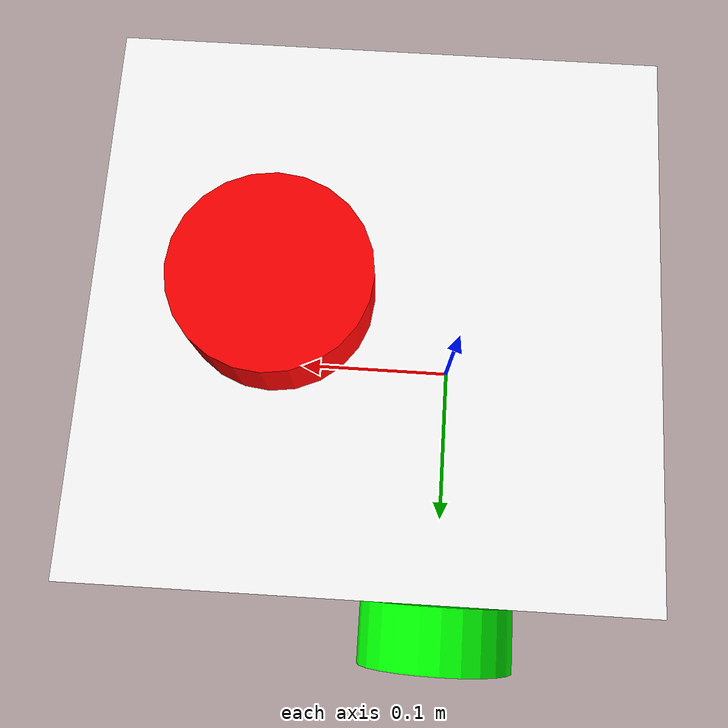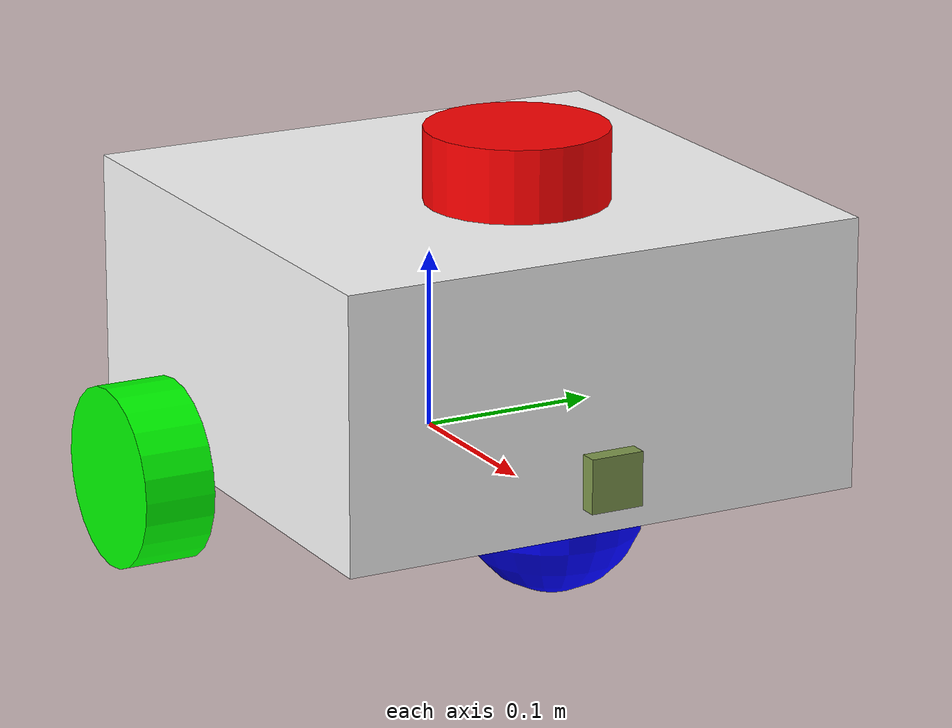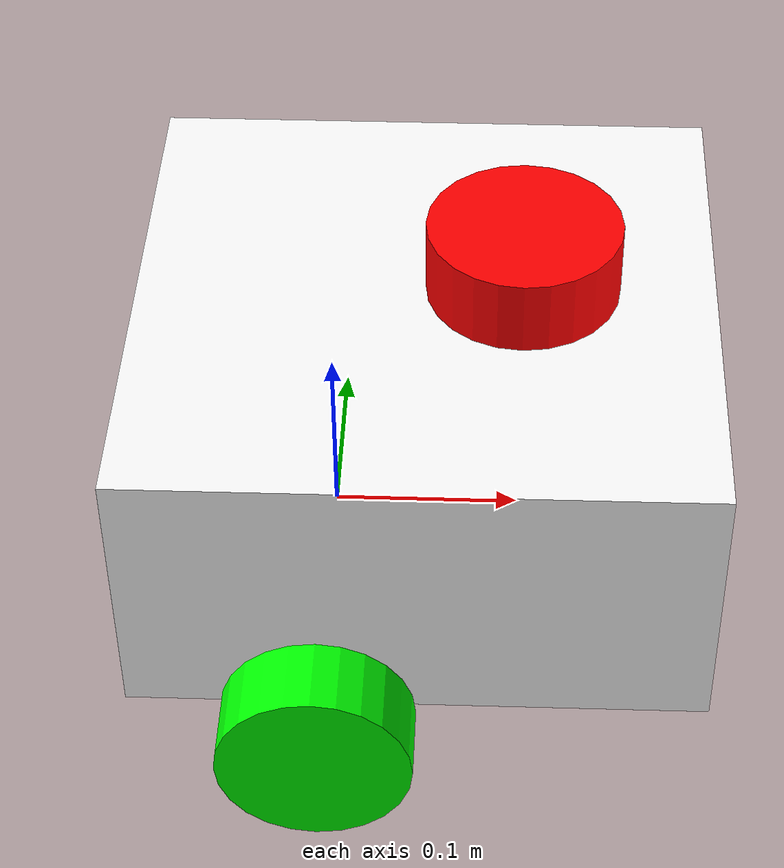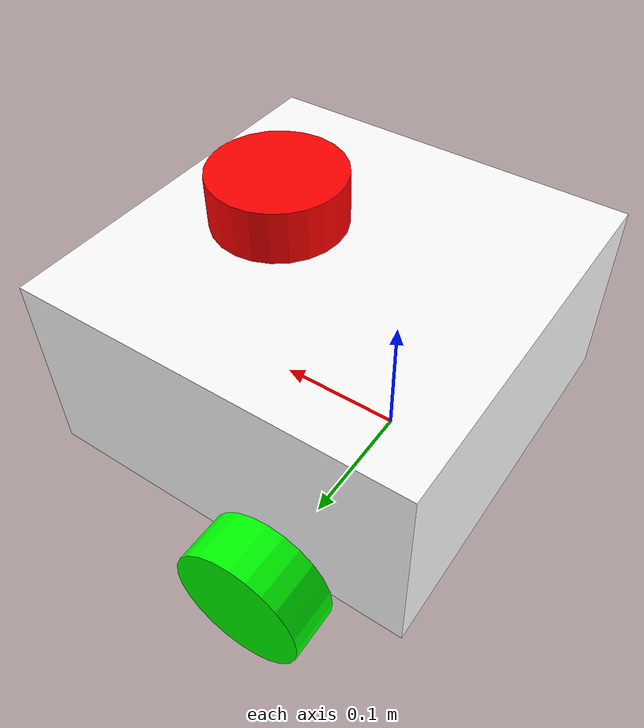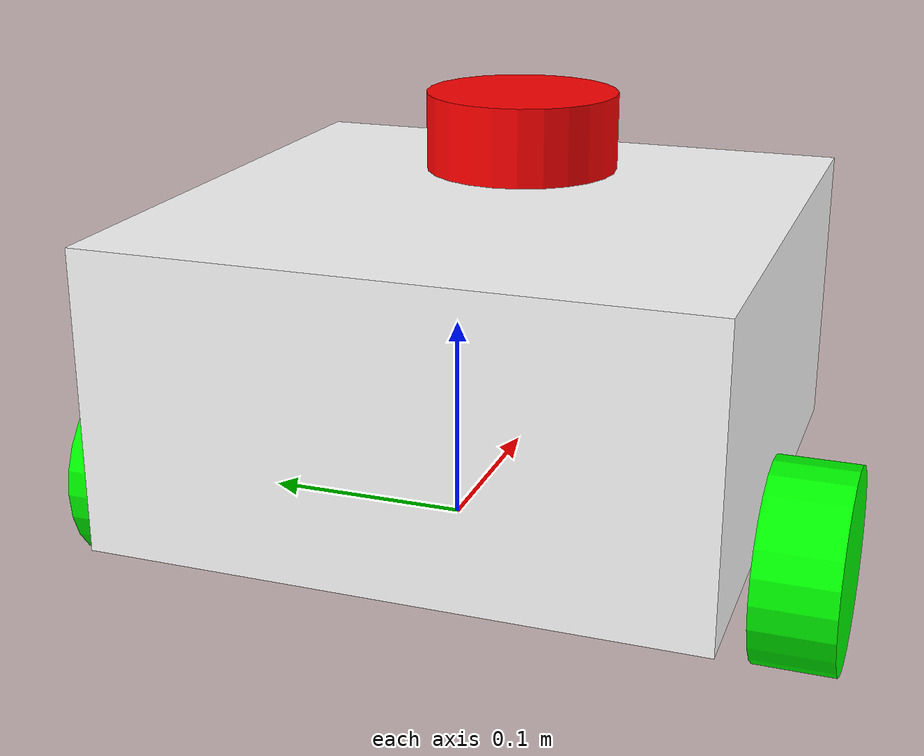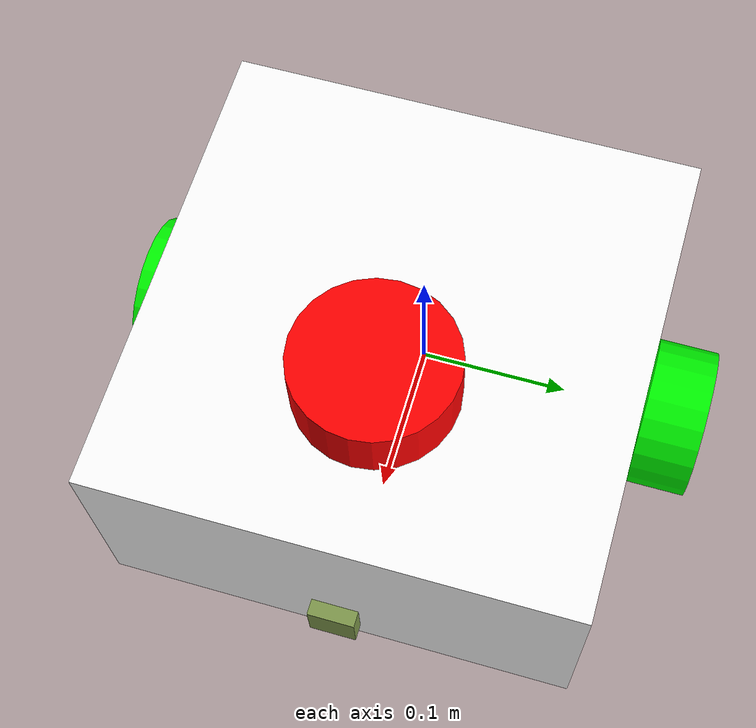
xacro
<?xml version="1.1" encoding="UTF-8"?>
<robot name="vektor" xmlns:xacro="http://www.ros.org/wiki/xacro">

    <xacro:include filename="vektor_core.xacro"/>
    <xacro:include filename="gazebo_control.xacro"/>
    <xacro:include filename="lidar.xacro"/>
    <xacro:include filename="camera.xacro"/>

</robot>

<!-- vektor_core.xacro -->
<robot xmlns:xacro="http://www.ros.org/wiki/xacro">

    <!-- OTHER FILES -->

    <xacro:include filename="inertial_macros.xacro"/>

    <xacro:include filename="materials.xacro"/>

    <!-- BASE LINK -->

    <link name="base_link"/>

    <!-- CHASSIS LINK -->

    <joint name="chassis_joint" type="fixed">
        <parent link="base_link"/>
        <child link="chassis_link"/>
        <origin xyz="-0.1 0 0"/>
    </joint>

    <link name="chassis_link">
        <visual>
            <origin xyz="0.15 0 0.075"/>
            <geometry>
                <box size="0.3 0.3 0.15"/>
            </geometry>
            <material name="white"/>
        </visual>
        <collision>
            <origin xyz="0.15 0 0.075"/>
            <geometry>
                <box size="0.3 0.3 0.15"/>
            </geometry>
        </collision>
        <xacro:inertial_box mass="0.5" x="0.3" y="0.3" z="0.15">
            <origin xyz="0.15 0 0.075" rpy="0 0 0"/>
        </xacro:inertial_box>
    </link>

    <!-- LEFT WHEEL LINK -->

    <joint name="left_wheel_joint" type="continuous">
        <parent link="base_link"/>
        <child link="left_wheel_link"/>
        <origin xyz="0 0.175 0" rpy="-${pi/2} 0 0"/>
        <axis xyz="0 0 1"/>
    </joint>

    <link name="left_wheel_link">
        <visual>
            <geometry>
                <cylinder radius="0.05" length="0.04"/>
            </geometry>
            <material name="green2">
                <color rgba="0.0 1.0 0.0 1.0"/>
            </material>
        </visual>
        <collision>
            <geometry>
                <cylinder radius="0.05" length="0.04"/>
            </geometry>
        </collision>
        <xacro:inertial_cylinder mass="0.1" length="0.04" radius="0.05">
            <origin xyz="0 0 0" rpy="0 0 0"/>
        </xacro:inertial_cylinder>
    </link>

    <!-- RIGHT WHEEL LINK -->

    <joint name="right_wheel_joint" type="continuous">
        <parent link="base_link"/>
        <child link="right_wheel_link"/>
        <origin xyz="0 -0.175 0" rpy="${pi/2} 0 0"/>
        <axis xyz="0 0 -1"/>
    </joint>

    <link name="right_wheel_link">
        <visual>
            <geometry>
                <cylinder radius="0.05" length="0.04"/>
            </geometry>
            <material name="green2">
                <color rgba="0.0 1.0 0.0 1.0"/>
            </material>
        </visual>
        <collision>
            <geometry>
                <cylinder radius="0.05" length="0.04"/>
            </geometry>
        </collision>
        <xacro:inertial_cylinder mass="0.1" length="0.04" radius="0.05">
            <origin xyz="0 0 0" rpy="0 0 0"/>
        </xacro:inertial_cylinder>
    </link>

    <!-- CASTER WHEEL LINK -->

    <joint name="caster_wheel_joint" type="fixed">
        <parent link="chassis_link"/>
        <child link="caster_wheel_link"/>
        <origin xyz="0.24 0 0"/>
    </joint>

    <link name="caster_wheel_link">
        <visual>
            <geometry>
                <sphere radius="0.05"/>
            </geometry>
            <material name="blue2">
                <color rgba="0.0 0.0 1.0 1.0"/>
            </material>
        </visual>
        <collision>
            <geometry>
                <sphere radius="0.05"/>
            </geometry>
        </collision>
        <xacro:inertial_sphere mass="0.1" radius="0.05">
            <origin xyz="0 0 0" rpy="0 0 0"/>
        </xacro:inertial_sphere>
    </link>

    <gazebo reference="caster_wheel_link">
        <mu1 value="0.001"/>
        <mu2 value="0.001"/>
    </gazebo>

</robot>

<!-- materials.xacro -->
<robot xmlns:xacro="http://www.ros.org/wiki/xacro">

  <!-- Solid -->
  <material name="white">
    <color rgba="1.0 1.0 1.0 1.0"/>
  </material>

  <material name="Gray">
    <color rgba="0.6 0.6 0.6 1.0"/>
  </material>

  <material name="black">
    <color rgba="0.0 0.0 0.0 1.0"/>
  </material>

  <material name="red">
    <color rgba="1.0 0.0 0.0 1.0"/>
  </material>

  <material name="yellow">
    <color rgba="1.0 1.0 0.0 1.0"/>
  </material>

  <material name="green">
    <color rgba="0.0 1.0 0.0 1.0"/>
  </material>

  <material name="blue">
    <color rgba="0.0 0.0 1.0 1.0"/>
  </material>

  <!-- Exotic -->
  <material name="paper">
    <color rgba="0.85 0.80 0.73 1.0"/>
  </material>

  <material name="Salmon">
    <color rgba="0.9 0.5 0.5 1.0"/>
  </material>

  <material name="Dark purple">
    <color rgba="0.3 0.1 0.4 1.0"/>
  </material>

  <material name="Olive">
    <color rgba="0.5 0.6 0.3 1.0"/>
  </material>

</robot>

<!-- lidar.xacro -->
<robot xmlns:xacro="http://www.ros.org/wiki/xacro">

    <joint name="lidar_joint" type="fixed">
        <parent link="base_link"/>
        <child link="lidar_frame"/>
        <origin xyz="0.1 0 0.175" rpy="0 0 0"/>
    </joint>

    <link name="lidar_frame">
        <frame_id>lidar_frame</frame_id>
        <visual>
            <geometry>
                <cylinder radius="0.05" length="0.04"/>
            </geometry>
            <material name="red2">
                <color rgba="1.0 0.0 0.0 1.0"/>
            </material>
        </visual>
        <collision>
            <geometry>
                <cylinder radius="0.05" length="0.04"/>
            </geometry>
        </collision>
        <xacro:inertial_cylinder mass="0.1" length="0.04" radius="0.05">
            <origin xyz="0 0 0" rpy="0 0 0"/>
        </xacro:inertial_cylinder>
    </link>

    <gazebo reference="lidar_frame">
        <sensor name='my_lidar' type='gpu_lidar'>
            <pose>0 0 0 0 0 0</pose>
            <topic>lidar</topic>
            <ignition_frame_id>lidar_frame</ignition_frame_id>
            <update_rate>10</update_rate>
            <lidar>
                <scan>
                    <horizontal>
                        <samples>640</samples>
                        <resolution>1</resolution>
                        <min_angle>-3.14</min_angle>
                        <max_angle>3.14</max_angle>
                    </horizontal>
                    <vertical>
                      <samples>1</samples>
                      <resolution>1</resolution>
                      <min_angle>0.0</min_angle>
                      <max_angle>0.0</max_angle>
                    </vertical>
                </scan>
                <range>
                    <min>0.08</min>
                    <max>10.0</max>
                    <resolution>0.01</resolution>
                </range>
            </lidar>
            <always_on>true</always_on>
            <visualize>true</visualize>
        </sensor>
    </gazebo>

</robot>

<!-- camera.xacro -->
<robot xmlns:xacro="http://www.ros.org/wiki/xacro">

    <joint name="camera_joint" type="fixed">
        <parent link="chassis_link"/>
        <child link="camera_link"/>
        <origin xyz="0.305 0 0.03" rpy="0 0 0"/>
    </joint>

    <link name="camera_link">
        <visual>
            <geometry>
                <box size="0.010 0.03 0.03"/>
            </geometry>
            <material name="Olive"/>
        </visual>
    </link>

    <joint name="camera_optical_joint" type="fixed">
        <parent link="camera_link"/>
        <child link="camera_link_optical"/>
        <origin xyz="0 0 0" rpy="${-pi/2} 0 ${-pi/2}"/>
    </joint>

    <link name="camera_link_optical"></link>

    <gazebo reference="camera_link">
        <material>Gazebo/Green</material>

        <sensor name="camera" type="camera">
            <pose> 0 0 0 0 0 0 </pose>
            <visualize>true</visualize>
            <update_rate>10</update_rate>
            <camera>
                <horizontal_fov>1.089</horizontal_fov>
                <image>
                    <format>R8G8B8</format>
                    <width>640</width>
                    <height>480</height>
                </image>
                <clip>
                    <near>0.05</near>
                    <far>8.0</far>
                </clip>
            </camera>
            <plugin name="camera_controller" filename="libgazebo_ros_camera.so">
                <frame_name>camera_link_optical</frame_name>
            </plugin>
        </sensor>
    </gazebo>

</robot>
